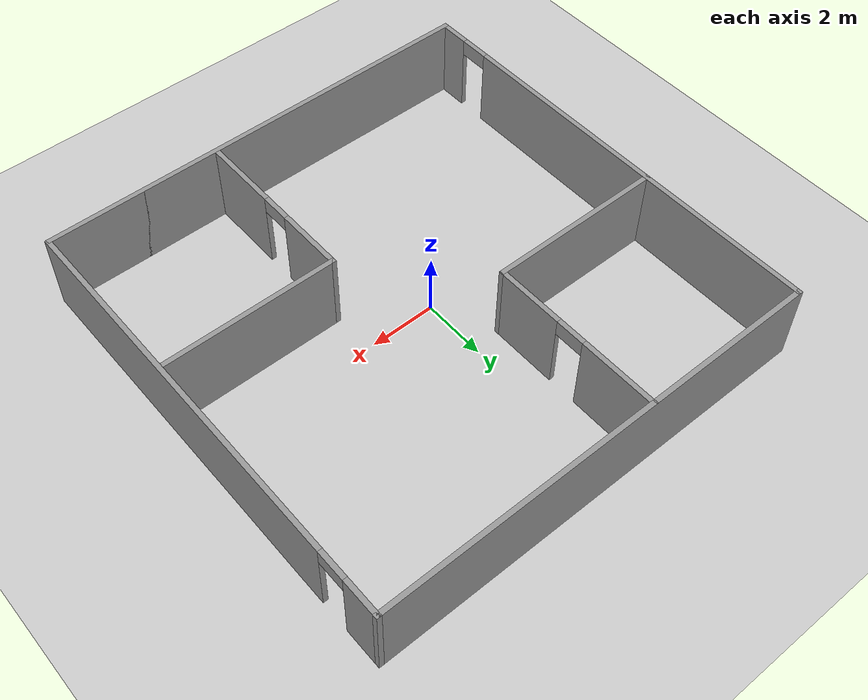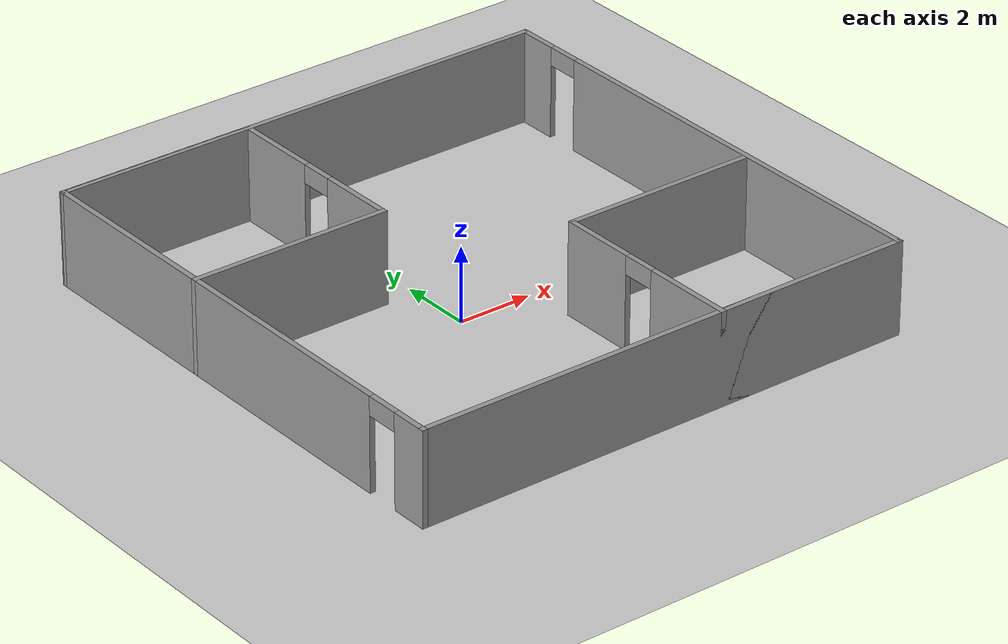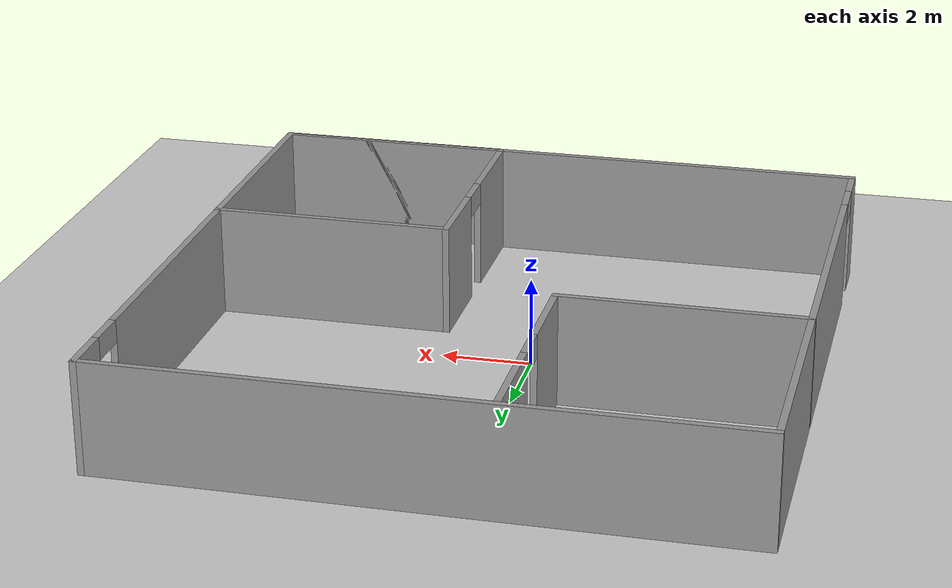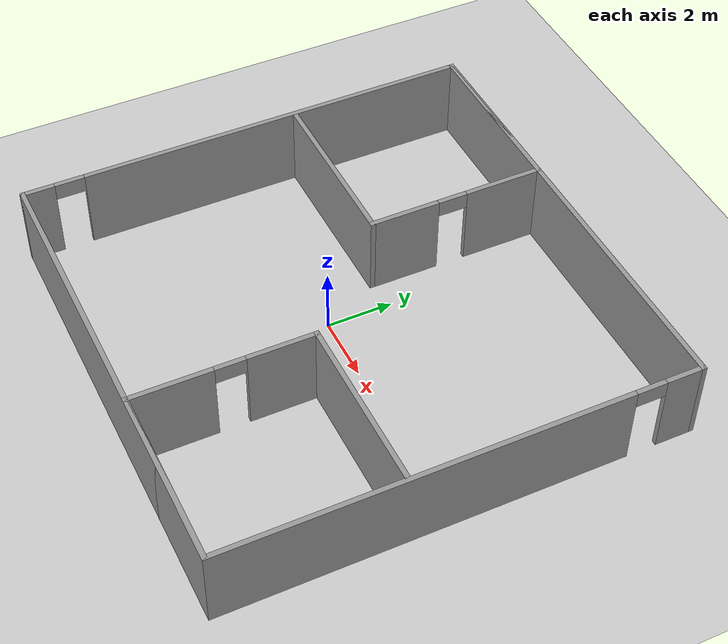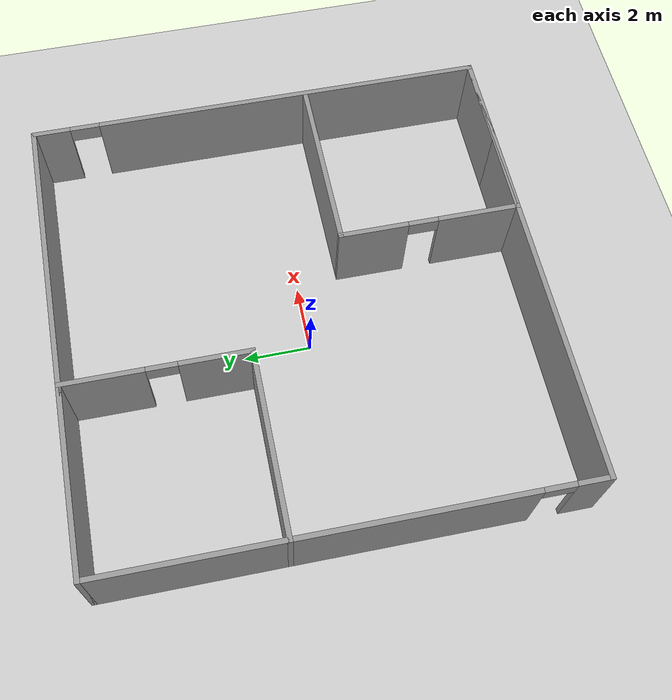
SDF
<sdf version="1.7">
 <world name="default">
  <light name="sun" type="directional">
   <pose>0 0 10 0 -0 0</pose>
   <diffuse>0.8 0.8 0.8 1</diffuse>
   <specular>0.2 0.2 0.2 1</specular>
   <attenuation>
    <range>1000</range>
    <constant>0.9</constant>
    <linear>0.01</linear>
    <quadratic>0.001</quadratic>
   </attenuation>
   <direction>-0.5 0.1 -0.9</direction>
   <spot><inner_angle>0</inner_angle><outer_angle>0</outer_angle><falloff>0</falloff></spot>
  </light>
  <model name="ground_plane">
   <static>1</static>
   <link name="link">
    <collision name="collision">
     <geometry><plane><normal>0 0 1</normal><size>100 100</size></plane></geometry>
     <surface><friction><ode><mu>100</mu><mu2>50</mu2></ode></friction></surface>
    </collision>
    <visual name="visual">
     <cast_shadows>0</cast_shadows>
     <geometry><plane><normal>0 0 1</normal><size>100 100</size></plane></geometry>
     <material>
      <script><uri>file://media/materials/scripts/gazebo.material</uri><name>Gazebo/Grey</name></script>
     </material>
    </visual>
   </link>
  </model>
  <gravity>0 0 -9.8</gravity>
  <magnetic_field>6e-06 2.3e-05 -4.2e-05</magnetic_field>
  <atmosphere type="adiabatic"/>
  <physics type="ode">
   <max_step_size>0.001</max_step_size>
   <real_time_factor>1</real_time_factor>
   <real_time_update_rate>1000</real_time_update_rate>
  </physics>
  <scene><ambient>0.4 0.4 0.4 1</ambient><background>0.7 0.7 0.7 1</background><shadows>1</shadows></scene>
  <audio><device>default</device></audio>
  <spherical_coordinates>
   <surface_model>EARTH_WGS84</surface_model>
   <latitude_deg>0</latitude_deg>
   <longitude_deg>0</longitude_deg>
   <elevation>0</elevation>
   <heading_deg>0</heading_deg>
  </spherical_coordinates>
  <model name="mapA.world">
   <pose>0.665 0.235 0 0 -0 0</pose>
   <link name="Wall_0">
    <collision name="Wall_0_Collision">
     <geometry><box><size>14 0.15 2.5</size></box></geometry>
     <pose>0 0 1.25 0 -0 0</pose>
    </collision>
    <visual name="Wall_0_Visual">
     <pose>0 0 1.25 0 -0 0</pose>
     <geometry><box><size>14 0.15 2.5</size></box></geometry>
     <material>
      <script><uri>file://media/materials/scripts/gazebo.material</uri><name>Gazebo/Grey</name></script>
      <ambient>1 1 1 1</ambient>
     </material>
     <meta><layer>0</layer></meta>
    </visual>
    <pose>0 -6.925 0 0 -0 0</pose>
   </link>
   <link name="Wall_1">
    <pose>6.925 -0 0 0 -0 1.5708</pose>
    <visual name="Wall_1_Visual_0">
     <pose>-1.04579 0 1.25 0 -0 0</pose>
     <geometry><box><size>11.9084 0.15 2.5</size></box></geometry>
     <material>
      <script><uri>file://media/materials/scripts/gazebo.material</uri><name>Gazebo/Grey</name></script>
      <ambient>1 1 1 1</ambient>
     </material>
     <meta><layer>0</layer></meta>
    </visual>
    <collision name="Wall_1_Collision_0">
     <geometry><box><size>11.9084 0.15 2.5</size></box></geometry>
     <pose>-1.04579 0 1.25 0 -0 0</pose>
    </collision>
    <visual name="Wall_1_Visual_1">
     <pose>6.40421 0 1.25 0 -0 0</pose>
     <geometry><box><size>1.19159 0.15 2.5</size></box></geometry>
     <material>
      <script><uri>file://media/materials/scripts/gazebo.material</uri><name>Gazebo/Grey</name></script>
      <ambient>1 1 1 1</ambient>
     </material>
     <meta><layer>0</layer></meta>
    </visual>
    <collision name="Wall_1_Collision_1">
     <geometry><box><size>1.19159 0.15 2.5</size></box></geometry>
     <pose>6.40421 0 1.25 0 -0 0</pose>
    </collision>
    <visual name="Wall_1_Visual_2">
     <pose>5.35841 0 2.25 0 -0 0</pose>
     <geometry><box><size>0.9 0.15 0.5</size></box></geometry>
     <material>
      <script><uri>file://media/materials/scripts/gazebo.material</uri><name>Gazebo/Grey</name></script>
      <ambient>1 1 1 1</ambient>
     </material>
     <meta><layer>0</layer></meta>
    </visual>
    <collision name="Wall_1_Collision_2">
     <geometry><box><size>0.9 0.15 0.5</size></box></geometry>
     <pose>5.35841 0 2.25 0 -0 0</pose>
    </collision>
   </link>
   <link name="Wall_10">
    <pose>1.575 -4.25 0 0 -0 1.5708</pose>
    <visual name="Wall_10_Visual_0">
     <pose>-1.50287 0 1.25 0 -0 0</pose>
     <geometry><box><size>2.49425 0.15 2.5</size></box></geometry>
     <material>
      <script><uri>file://media/materials/scripts/gazebo.material</uri><name>Gazebo/Grey</name></script>
      <ambient>1 1 1 1</ambient>
     </material>
     <meta><layer>0</layer></meta>
    </visual>
    <collision name="Wall_10_Collision_0">
     <geometry><box><size>2.49425 0.15 2.5</size></box></geometry>
     <pose>-1.50287 0 1.25 0 -0 0</pose>
    </collision>
    <visual name="Wall_10_Visual_1">
     <pose>1.69713 0 1.25 0 -0 0</pose>
     <geometry><box><size>2.10575 0.15 2.5</size></box></geometry>
     <material>
      <script><uri>file://media/materials/scripts/gazebo.material</uri><name>Gazebo/Grey</name></script>
      <ambient>1 1 1 1</ambient>
     </material>
     <meta><layer>0</layer></meta>
    </visual>
    <collision name="Wall_10_Collision_1">
     <geometry><box><size>2.10575 0.15 2.5</size></box></geometry>
     <pose>1.69713 0 1.25 0 -0 0</pose>
    </collision>
    <visual name="Wall_10_Visual_2">
     <pose>0.194255 0 2.25 0 -0 0</pose>
     <geometry><box><size>0.9 0.15 0.5</size></box></geometry>
     <material>
      <script><uri>file://media/materials/scripts/gazebo.material</uri><name>Gazebo/Grey</name></script>
      <ambient>1 1 1 1</ambient>
     </material>
     <meta><layer>0</layer></meta>
    </visual>
    <collision name="Wall_10_Collision_2">
     <geometry><box><size>0.9 0.15 0.5</size></box></geometry>
     <pose>0.194255 0 2.25 0 -0 0</pose>
    </collision>
   </link>
   <link name="Wall_11">
    <collision name="Wall_11_Collision">
     <geometry><box><size>5.5 0.15 2.5</size></box></geometry>
     <pose>0 0 1.25 0 -0 0</pose>
    </collision>
    <visual name="Wall_11_Visual">
     <pose>0 0 1.25 0 -0 0</pose>
     <geometry><box><size>5.5 0.15 2.5</size></box></geometry>
     <material>
      <script><uri>file://media/materials/scripts/gazebo.material</uri><name>Gazebo/Grey</name></script>
      <ambient>1 1 1 1</ambient>
     </material>
     <meta><layer>0</layer></meta>
    </visual>
    <pose>4.25 -1.575 0 0 -0 0</pose>
   </link>
   <link name="Wall_2">
    <collision name="Wall_2_Collision">
     <geometry><box><size>14 0.15 2.5</size></box></geometry>
     <pose>0 0 1.25 0 -0 0</pose>
    </collision>
    <visual name="Wall_2_Visual">
     <pose>0 0 1.25 0 -0 0</pose>
     <geometry><box><size>14 0.15 2.5</size></box></geometry>
     <material>
      <script><uri>file://media/materials/scripts/gazebo.material</uri><name>Gazebo/Grey</name></script>
      <ambient>1 1 1 1</ambient>
     </material>
     <meta><layer>0</layer></meta>
    </visual>
    <pose>0 6.925 0 0 -0 3.14159</pose>
   </link>
   <link name="Wall_3">
    <pose>-6.925 -0 0 0 -0 -1.5708</pose>
    <visual name="Wall_3_Visual_0">
     <pose>-0.956948 0 1.25 0 -0 0</pose>
     <geometry><box><size>12.0861 0.15 2.5</size></box></geometry>
     <material>
      <script><uri>file://media/materials/scripts/gazebo.material</uri><name>Gazebo/Grey</name></script>
      <ambient>1 1 1 1</ambient>
     </material>
     <meta><layer>0</layer></meta>
    </visual>
    <collision name="Wall_3_Collision_0">
     <geometry><box><size>12.0861 0.15 2.5</size></box></geometry>
     <pose>-0.956948 0 1.25 0 -0 0</pose>
    </collision>
    <visual name="Wall_3_Visual_1">
     <pose>6.49305 0 1.25 0 -0 0</pose>
     <geometry><box><size>1.0139 0.15 2.5</size></box></geometry>
     <material>
      <script><uri>file://media/materials/scripts/gazebo.material</uri><name>Gazebo/Grey</name></script>
      <ambient>1 1 1 1</ambient>
     </material>
     <meta><layer>0</layer></meta>
    </visual>
    <collision name="Wall_3_Collision_1">
     <geometry><box><size>1.0139 0.15 2.5</size></box></geometry>
     <pose>6.49305 0 1.25 0 -0 0</pose>
    </collision>
    <visual name="Wall_3_Visual_2">
     <pose>5.5361 0 2.25 0 -0 0</pose>
     <geometry><box><size>0.9 0.15 0.5</size></box></geometry>
     <material>
      <script><uri>file://media/materials/scripts/gazebo.material</uri><name>Gazebo/Grey</name></script>
      <ambient>1 1 1 1</ambient>
     </material>
     <meta><layer>0</layer></meta>
    </visual>
    <collision name="Wall_3_Collision_2">
     <geometry><box><size>0.9 0.15 0.5</size></box></geometry>
     <pose>5.5361 0 2.25 0 -0 0</pose>
    </collision>
   </link>
   <link name="Wall_5">
    <collision name="Wall_5_Collision">
     <geometry><box><size>5.5 0.15 2.5</size></box></geometry>
     <pose>0 0 1.25 0 -0 0</pose>
    </collision>
    <visual name="Wall_5_Visual">
     <pose>0 0 1.25 0 -0 0</pose>
     <geometry><box><size>5.5 0.15 2.5</size></box></geometry>
     <material>
      <script><uri>file://media/materials/scripts/gazebo.material</uri><name>Gazebo/Grey</name></script>
      <ambient>1 1 1 1</ambient>
     </material>
     <meta><layer>0</layer></meta>
    </visual>
    <pose>-4.25 6.925 0 0 -0 0</pose>
   </link>
   <link name="Wall_6">
    <pose>-1.575 4.25 0 0 -0 -1.5708</pose>
    <visual name="Wall_6_Visual_0">
     <pose>-1.52968 0 1.25 0 -0 0</pose>
     <geometry><box><size>2.44064 0.15 2.5</size></box></geometry>
     <material>
      <script><uri>file://media/materials/scripts/gazebo.material</uri><name>Gazebo/Grey</name></script>
      <ambient>1 1 1 1</ambient>
     </material>
     <meta><layer>0</layer></meta>
    </visual>
    <collision name="Wall_6_Collision_0">
     <geometry><box><size>2.44064 0.15 2.5</size></box></geometry>
     <pose>-1.52968 0 1.25 0 -0 0</pose>
    </collision>
    <visual name="Wall_6_Visual_1">
     <pose>1.67032 0 1.25 0 -0 0</pose>
     <geometry><box><size>2.15936 0.15 2.5</size></box></geometry>
     <material>
      <script><uri>file://media/materials/scripts/gazebo.material</uri><name>Gazebo/Grey</name></script>
      <ambient>1 1 1 1</ambient>
     </material>
     <meta><layer>0</layer></meta>
    </visual>
    <collision name="Wall_6_Collision_1">
     <geometry><box><size>2.15936 0.15 2.5</size></box></geometry>
     <pose>1.67032 0 1.25 0 -0 0</pose>
    </collision>
    <visual name="Wall_6_Visual_2">
     <pose>0.140641 0 2.25 0 -0 0</pose>
     <geometry><box><size>0.9 0.15 0.5</size></box></geometry>
     <material>
      <script><uri>file://media/materials/scripts/gazebo.material</uri><name>Gazebo/Grey</name></script>
      <ambient>1 1 1 1</ambient>
     </material>
     <meta><layer>0</layer></meta>
    </visual>
    <collision name="Wall_6_Collision_2">
     <geometry><box><size>0.9 0.15 0.5</size></box></geometry>
     <pose>0.140641 0 2.25 0 -0 0</pose>
    </collision>
   </link>
   <link name="Wall_7">
    <collision name="Wall_7_Collision">
     <geometry><box><size>5.5 0.15 2.5</size></box></geometry>
     <pose>0 0 1.25 0 -0 0</pose>
    </collision>
    <visual name="Wall_7_Visual">
     <pose>0 0 1.25 0 -0 0</pose>
     <geometry><box><size>5.5 0.15 2.5</size></box></geometry>
     <material>
      <script><uri>file://media/materials/scripts/gazebo.material</uri><name>Gazebo/Grey</name></script>
      <ambient>1 1 1 1</ambient>
     </material>
     <meta><layer>0</layer></meta>
    </visual>
    <pose>-4.25 1.575 0 0 -0 3.14159</pose>
   </link>
   <link name="Wall_9">
    <collision name="Wall_9_Collision">
     <geometry><box><size>5.5 0.15 2.5</size></box></geometry>
     <pose>0 0 1.25 0 -0 0</pose>
    </collision>
    <visual name="Wall_9_Visual">
     <pose>0 0 1.25 0 -0 0</pose>
     <geometry><box><size>5.5 0.15 2.5</size></box></geometry>
     <material>
      <script><uri>file://media/materials/scripts/gazebo.material</uri><name>Gazebo/Grey</name></script>
      <ambient>1 1 1 1</ambient>
     </material>
     <meta><layer>0</layer></meta>
    </visual>
    <pose>4.25 -6.925 0 0 -0 3.14159</pose>
   </link>
   <static>1</static>
  </model>
 </world>
</sdf>
